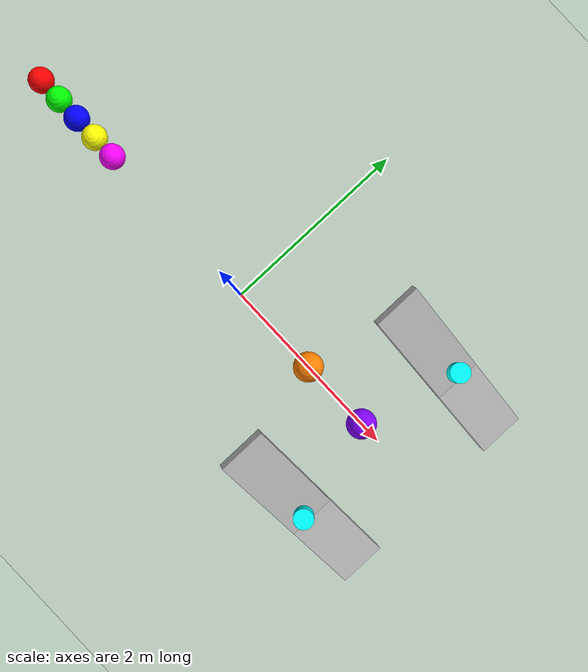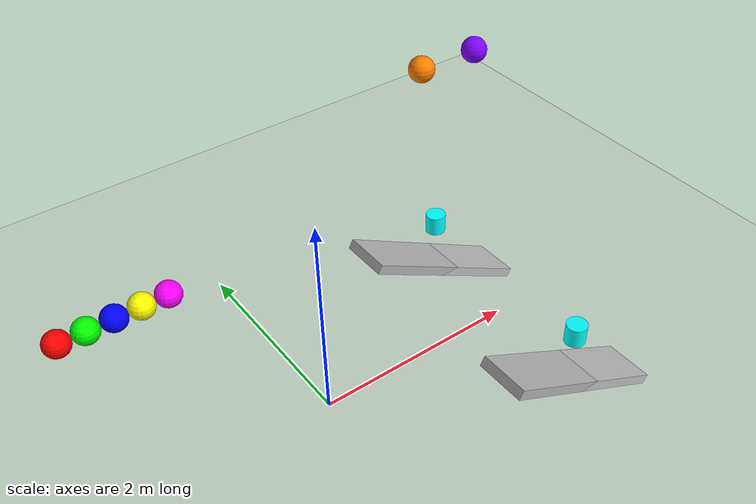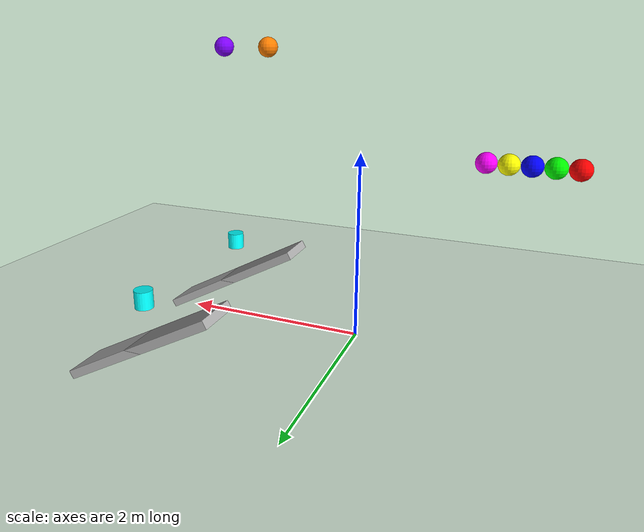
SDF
<?xml version="1.0" ?>
<sdf version="1.7">
  <world name="physics_collision_demo">
    <!-- Include default sun and ground plane -->
    <include>
      <uri>model://sun</uri>
    </include>

    <include>
      <uri>model://ground_plane</uri>
    </include>

    <!-- Physics configuration -->
    <physics name="default_physics" type="ode">
      <gravity>0 0 -9.8</gravity>
      <ode>
        <solver>
          <type>quick</type>
          <iters>10</iters>
          <sor>1.3</sor>
        </solver>
        <constraints>
          <cfm>0.0</cfm>
          <erp>0.2</erp>
          <contact_max_correcting_vel>100.0</contact_max_correcting_vel>
          <contact_surface_layer>0.001</contact_surface_layer>
        </constraints>
      </ode>
    </physics>

    <!-- Newton's Cradle - demonstrates momentum conservation -->
    <model name="newtons_cradle">
      <!-- First sphere -->
      <model name="sphere_1">
        <pose>-2 0 2 0 0 0</pose>
        <link name="link">
          <visual name="visual">
            <geometry>
              <sphere>
                <radius>0.1</radius>
              </sphere>
            </geometry>
            <material>
              <ambient>1 0 0 1</ambient>
              <diffuse>1 0 0 1</diffuse>
            </material>
          </visual>
          <collision name="collision">
            <geometry>
              <sphere>
                <radius>0.1</radius>
              </sphere>
            </geometry>
          </collision>
          <inertial>
            <mass>1.0</mass>
            <inertia>
              <ixx>0.004</ixx>
              <ixy>0</ixy>
              <ixz>0</ixz>
              <iyy>0.004</iyy>
              <iyz>0</iyz>
              <izz>0.004</izz>
            </inertia>
          </inertial>
        </link>
        <joint name="joint_1" type="revolute">
          <parent>world</parent>
          <child>link</child>
          <axis>
            <xyz>0 1 0</xyz>
          </axis>
          <pose>-2 0 3 0 0 0</pose>
        </joint>
      </model>

      <model name="sphere_2">
        <pose>-1.8 0 2 0 0 0</pose>
        <link name="link">
          <visual name="visual">
            <geometry>
              <sphere>
                <radius>0.1</radius>
              </sphere>
            </geometry>
            <material>
              <ambient>0 1 0 1</ambient>
              <diffuse>0 1 0 1</diffuse>
            </material>
          </visual>
          <collision name="collision">
            <geometry>
              <sphere>
                <radius>0.1</radius>
              </sphere>
            </geometry>
          </collision>
          <inertial>
            <mass>1.0</mass>
            <inertia>
              <ixx>0.004</ixx>
              <ixy>0</ixy>
              <ixz>0</ixz>
              <iyy>0.004</iyy>
              <iyz>0</iyz>
              <izz>0.004</izz>
            </inertia>
          </inertial>
        </link>
        <joint name="joint_2" type="revolute">
          <parent>world</parent>
          <child>link</child>
          <axis>
            <xyz>0 1 0</xyz>
          </axis>
          <pose>-1.8 0 3 0 0 0</pose>
        </joint>
      </model>

      <model name="sphere_3">
        <pose>-1.6 0 2 0 0 0</pose>
        <link name="link">
          <visual name="visual">
            <geometry>
              <sphere>
                <radius>0.1</radius>
              </sphere>
            </geometry>
            <material>
              <ambient>0 0 1 1</ambient>
              <diffuse>0 0 1 1</diffuse>
            </material>
          </visual>
          <collision name="collision">
            <geometry>
              <sphere>
                <radius>0.1</radius>
              </sphere>
            </geometry>
          </collision>
          <inertial>
            <mass>1.0</mass>
            <inertia>
              <ixx>0.004</ixx>
              <ixy>0</ixy>
              <ixz>0</ixz>
              <iyy>0.004</iyy>
              <iyz>0</iyz>
              <izz>0.004</izz>
            </inertia>
          </inertial>
        </link>
        <joint name="joint_3" type="revolute">
          <parent>world</parent>
          <child>link</child>
          <axis>
            <xyz>0 1 0</xyz>
          </axis>
          <pose>-1.6 0 3 0 0 0</pose>
        </joint>
      </model>

      <model name="sphere_4">
        <pose>-1.4 0 2 0 0 0</pose>
        <link name="link">
          <visual name="visual">
            <geometry>
              <sphere>
                <radius>0.1</radius>
              </sphere>
            </geometry>
            <material>
              <ambient>1 1 0 1</ambient>
              <diffuse>1 1 0 1</diffuse>
            </material>
          </visual>
          <collision name="collision">
            <geometry>
              <sphere>
                <radius>0.1</radius>
              </sphere>
            </geometry>
          </collision>
          <inertial>
            <mass>1.0</mass>
            <inertia>
              <ixx>0.004</ixx>
              <ixy>0</ixy>
              <ixz>0</ixz>
              <iyy>0.004</iyy>
              <iyz>0</iyz>
              <izz>0.004</izz>
            </inertia>
          </inertial>
        </link>
        <joint name="joint_4" type="revolute">
          <parent>world</parent>
          <child>link</child>
          <axis>
            <xyz>0 1 0</xyz>
          </axis>
          <pose>-1.4 0 3 0 0 0</pose>
        </joint>
      </model>

      <model name="sphere_5">
        <pose>-1.2 0 2 0 0 0</pose>
        <link name="link">
          <visual name="visual">
            <geometry>
              <sphere>
                <radius>0.1</radius>
              </sphere>
            </geometry>
            <material>
              <ambient>1 0 1 1</ambient>
              <diffuse>1 0 1 1</diffuse>
            </material>
          </visual>
          <collision name="collision">
            <geometry>
              <sphere>
                <radius>0.1</radius>
              </sphere>
            </geometry>
          </collision>
          <inertial>
            <mass>1.0</mass>
            <inertia>
              <ixx>0.004</ixx>
              <ixy>0</ixy>
              <ixz>0</ixz>
              <iyy>0.004</iyy>
              <iyz>0</iyz>
              <izz>0.004</izz>
            </inertia>
          </inertial>
        </link>
        <joint name="joint_5" type="revolute">
          <parent>world</parent>
          <child>link</child>
          <axis>
            <xyz>0 1 0</xyz>
          </axis>
          <pose>-1.2 0 3 0 0 0</pose>
        </joint>
      </model>
    </model>

    <!-- Bouncing balls with different restitution values -->
    <model name="bouncy_sphere">
      <pose>1 0 3 0 0 0</pose>
      <link name="sphere_link">
        <visual name="sphere_visual">
          <geometry>
            <sphere>
              <radius>0.1</radius>
            </sphere>
          </geometry>
          <material>
            <ambient>1 0.5 0 1</ambient>
            <diffuse>1 0.5 0 1</diffuse>
          </material>
        </visual>
        <collision name="sphere_collision">
          <geometry>
            <sphere>
              <radius>0.1</radius>
            </sphere>
          </geometry>
          <surface>
            <bounce>
              <restitution_coefficient>0.9</restitution_coefficient>
              <threshold>100000</threshold>
            </bounce>
          </surface>
        </collision>
        <inertial>
          <mass>0.5</mass>
          <inertia>
            <ixx>0.001</ixx>
            <ixy>0</ixy>
            <ixz>0</ixz>
            <iyy>0.001</iyy>
            <iyz>0</iyz>
            <izz>0.001</izz>
          </inertia>
        </inertial>
      </link>
    </model>

    <model name="not_so_bouncy_sphere">
      <pose>1.5 0 3 0 0 0</pose>
      <link name="sphere_link">
        <visual name="sphere_visual">
          <geometry>
            <sphere>
              <radius>0.1</radius>
            </sphere>
          </geometry>
          <material>
            <ambient>0.5 0 1 1</ambient>
            <diffuse>0.5 0 1 1</diffuse>
          </material>
        </visual>
        <collision name="sphere_collision">
          <geometry>
            <sphere>
              <radius>0.1</radius>
            </sphere>
          </geometry>
          <surface>
            <bounce>
              <restitution_coefficient>0.2</restitution_coefficient>
              <threshold>100000</threshold>
            </bounce>
          </surface>
        </collision>
        <inertial>
          <mass>0.5</mass>
          <inertia>
            <ixx>0.001</ixx>
            <ixy>0</ixy>
            <ixz>0</ixz>
            <iyy>0.001</iyy>
            <iyz>0</iyz>
            <izz>0.001</izz>
          </inertia>
        </inertial>
      </link>
    </model>

    <!-- Ramps to demonstrate different physics concepts -->
    <model name="friction_ramp_1">
      <pose>2 1 0 0 0.5 0</pose>
      <link name="ramp_link">
        <visual name="ramp_visual">
          <geometry>
            <box>
              <size>2 0.5 0.1</size>
            </box>
          </geometry>
          <material>
            <ambient>0.7 0.7 0.7 1</ambient>
            <diffuse>0.7 0.7 0.7 1</diffuse>
          </material>
        </visual>
        <collision name="ramp_collision">
          <geometry>
            <box>
              <size>2 0.5 0.1</size>
            </box>
          </geometry>
          <surface>
            <friction>
              <ode>
                <mu>0.8</mu>
                <mu2>0.8</mu2>
              </ode>
            </friction>
          </surface>
        </collision>
        <inertial>
          <mass>50</mass>
          <inertia>
            <ixx>10</ixx>
            <ixy>0</ixy>
            <ixz>0</ixz>
            <iyy>10</iyy>
            <iyz>0</iyz>
            <izz>10</izz>
          </inertia>
        </inertial>
      </link>
    </model>

    <model name="friction_ramp_2">
      <pose>2 -1 0 0 0.5 0</pose>
      <link name="ramp_link">
        <visual name="ramp_visual">
          <geometry>
            <box>
              <size>2 0.5 0.1</size>
            </box>
          </geometry>
          <material>
            <ambient>0.7 0.7 0.7 1</ambient>
            <diffuse>0.7 0.7 0.7 1</diffuse>
          </material>
        </visual>
        <collision name="ramp_collision">
          <geometry>
            <box>
              <size>2 0.5 0.1</size>
            </box>
          </geometry>
          <surface>
            <friction>
              <ode>
                <mu>0.1</mu>
                <mu2>0.1</mu2>
              </ode>
            </friction>
          </surface>
        </collision>
        <inertial>
          <mass>50</mass>
          <inertia>
            <ixx>10</ixx>
            <ixy>0</ixy>
            <ixz>0</ixz>
            <iyy>10</iyy>
            <iyz>0</iyz>
            <izz>10</izz>
          </inertia>
        </inertial>
      </link>
    </model>

    <!-- Objects to place on ramps -->
    <model name="ramp_object_1">
      <pose>2 1 0.5 0 0 0</pose>
      <link name="object_link">
        <visual name="object_visual">
          <geometry>
            <cylinder>
              <radius>0.1</radius>
              <length>0.2</length>
            </cylinder>
          </geometry>
          <material>
            <ambient>0 1 1 1</ambient>
            <diffuse>0 1 1 1</diffuse>
          </material>
        </visual>
        <collision name="object_collision">
          <geometry>
            <cylinder>
              <radius>0.1</radius>
              <length>0.2</length>
            </cylinder>
          </geometry>
        </collision>
        <inertial>
          <mass>0.5</mass>
          <inertia>
            <ixx>0.0015</ixx>
            <ixy>0</ixy>
            <ixz>0</ixz>
            <iyy>0.0015</iyy>
            <iyz>0</iyz>
            <izz>0.001</izz>
          </inertia>
        </inertial>
      </link>
    </model>

    <model name="ramp_object_2">
      <pose>2 -1 0.5 0 0 0</pose>
      <link name="object_link">
        <visual name="object_visual">
          <geometry>
            <cylinder>
              <radius>0.1</radius>
              <length>0.2</length>
            </cylinder>
          </geometry>
          <material>
            <ambient>0 1 1 1</ambient>
            <diffuse>0 1 1 1</diffuse>
          </material>
        </visual>
        <collision name="object_collision">
          <geometry>
            <cylinder>
              <radius>0.1</radius>
              <length>0.2</length>
            </cylinder>
          </geometry>
        </collision>
        <inertial>
          <mass>0.5</mass>
          <inertia>
            <ixx>0.0015</ixx>
            <ixy>0</ixy>
            <ixz>0</ixz>
            <iyy>0.0015</iyy>
            <iyz>0</iyz>
            <izz>0.001</izz>
          </inertia>
        </inertial>
      </link>
    </model>
  </world>
</sdf>
